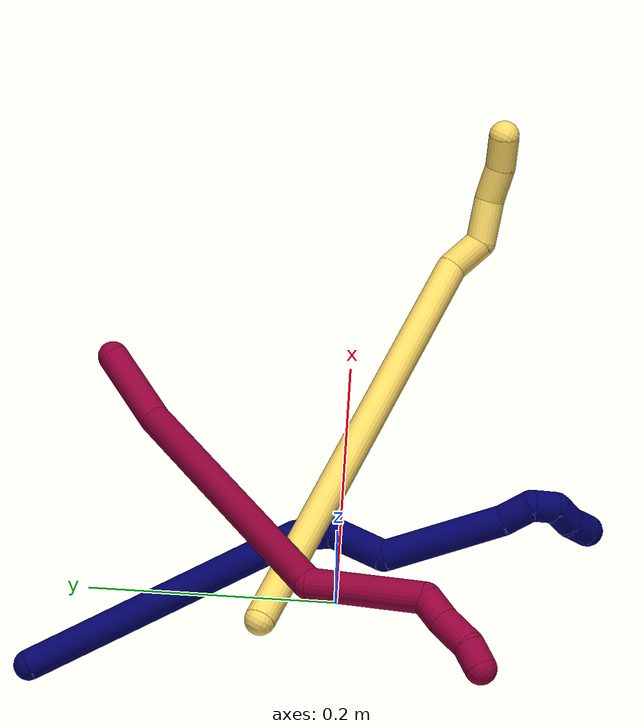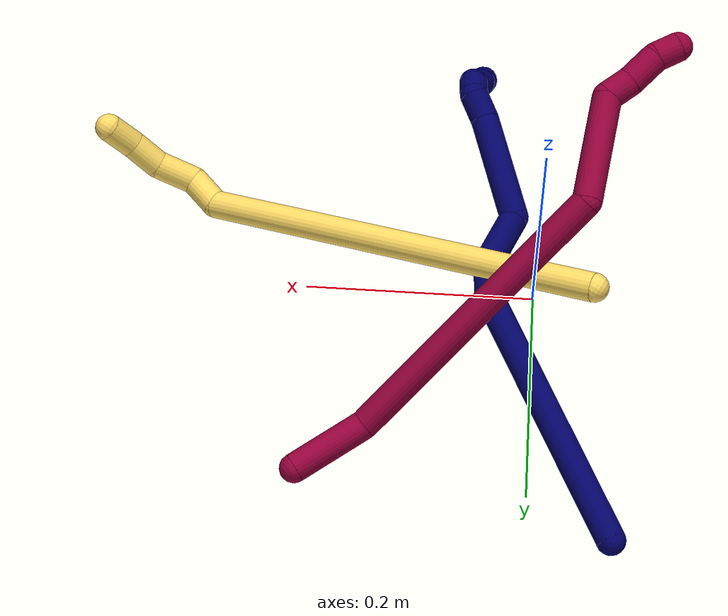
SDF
<sdf version="1.7">
 <world name="default">
  <model name="photoneo_s_sensor">
   <static>1</static>
   <pose>0 0 2 1.57079 1.57079 3.14159</pose>
   <link name="link">
    <inertial><mass>0.1</mass></inertial>
    <sensor name="sensor" type="depth">
     <update_rate>30</update_rate>
     <camera>
      <horizontal_fov>1.22</horizontal_fov>
      <image><width>1920</width><height>1200</height><format>B8G8R8</format></image>
      <clip><near>0.1</near><far>4</far></clip>
      <depth_camera><output>points</output></depth_camera>
     </camera>
     <plugin name="camera_plugin" filename="libgazebo_ros_depth_camera.so">
      <baseline>0.2</baseline>
      <alwaysOn>1</alwaysOn>
      <updateRate>0.0</updateRate>
      <cameraName>camera_ir</cameraName>
      <imageTopicName>/camera/color/image_raw</imageTopicName>
      <cameraInfoTopicName>/camera/color/camera_info</cameraInfoTopicName>
      <depthImageTopicName>/camera/depth/image_raw</depthImageTopicName>
      <depthImageCameraInfoTopicName>/camera/depth/camera_info</depthImageCameraInfoTopicName>
      <pointCloudTopicName>/camera/depth/points</pointCloudTopicName>
      <frameName>fr_optical</frameName>
      <pointCloudCutoff>0.1</pointCloudCutoff>
      <pointCloudCutoffMax>2.0</pointCloudCutoffMax>
      <distortionK1>0</distortionK1>
      <distortionK2>0</distortionK2>
      <distortionK3>0</distortionK3>
      <distortionT1>0</distortionT1>
      <distortionT2>0</distortionT2>
      <CxPrime>0</CxPrime>
      <Cx>0</Cx>
      <Cy>0</Cy>
      <focalLength>0</focalLength>
      <hackBaseline>0</hackBaseline>
     </plugin>
    </sensor>
   </link>
  </model>
  <model name="bin">
   <static>1</static>
   <link name="bottom">
    <collision name="collision-bottom">
     <pose>0 0 -0.01 0 -0 0</pose>
     <geometry><box><size>0.8 0.6 0.02</size></box></geometry>
     <surface>
      <friction><ode><mu>100</mu><mu2>100</mu2></ode></friction>
      <contact><collide_bitmask>65535</collide_bitmask></contact>
     </surface>
    </collision>
   </link>
   <link name="west_wall">
    <collision name="collision-west_wall">
     <pose>-0.41 0 0.1 0 -0 0</pose>
     <geometry><box><size>0.02 0.6 0.2</size></box></geometry>
     <surface>
      <friction><ode><mu>100</mu><mu2>100</mu2></ode></friction>
      <contact><collide_bitmask>65535</collide_bitmask></contact>
     </surface>
    </collision>
   </link>
   <link name="east_wall">
    <collision name="collision-east_wall">
     <pose>0.41 0 0.1 0 -0 0</pose>
     <geometry><box><size>0.02 0.6 0.2</size></box></geometry>
     <surface>
      <friction><ode><mu>100</mu><mu2>100</mu2></ode></friction>
      <contact><collide_bitmask>65535</collide_bitmask></contact>
     </surface>
    </collision>
   </link>
   <link name="south_wall">
    <collision name="collision-south_wall">
     <pose>0 -0.31 0.1 0 -0 0</pose>
     <geometry><box><size>0.8 0.02 0.2</size></box></geometry>
     <surface>
      <friction><ode><mu>100</mu><mu2>100</mu2></ode></friction>
      <contact><collide_bitmask>65535</collide_bitmask></contact>
     </surface>
    </collision>
   </link>
   <link name="north_wall">
    <collision name="collision-north_wall">
     <pose>0 0.31 0.1 0 -0 0</pose>
     <geometry><box><size>0.8 0.02 0.2</size></box></geometry>
     <surface>
      <friction><ode><mu>100</mu><mu2>100</mu2></ode></friction>
      <contact><collide_bitmask>65535</collide_bitmask></contact>
     </surface>
    </collision>
   </link>
  </model>
  <model name="5">
   <static>0</static>
   <link name="5">
    <collision name="collision-cylinder-e_1_1_4">
     <pose>0.07833 -0.049548 0.162453 0.296037 0.432126 0.065432</pose>
     <geometry><cylinder><radius>0.0125</radius><length>0.374066</length></cylinder></geometry>
     <surface>
      <friction><ode><mu>1.16</mu><mu2>1.16</mu2><slip1>0</slip1><slip2>0</slip2></ode></friction>
      <contact><ode><kp>1e+06</kp><kd>1</kd><max_vel>0</max_vel><min_depth>0.001</min_depth></ode></contact>
     </surface>
    </collision>
    <visual name="visual-cylinder-e_1_1_4">
     <pose>0.07833 -0.049548 0.162453 0.296037 0.432126 0.065432</pose>
     <geometry><cylinder><radius>0.0125</radius><length>0.374066</length></cylinder></geometry>
     <material><ambient>1 0.858824 0.4 1</ambient></material>
    </visual>
    <collision name="collision-cylinder-e_2_4_5">
     <pose>0.154698 -0.104574 0.339721 0.354182 -0.123553 -0.022139</pose>
     <geometry><cylinder><radius>0.0125</radius><length>0.031835</length></cylinder></geometry>
     <surface>
      <friction><ode><mu>1.16</mu><mu2>1.16</mu2><slip1>0</slip1><slip2>0</slip2></ode></friction>
      <contact><ode><kp>1e+06</kp><kd>1</kd><max_vel>0</max_vel><min_depth>0.001</min_depth></ode></contact>
     </surface>
    </collision>
    <visual name="visual-cylinder-e_2_4_5">
     <pose>0.154698 -0.104574 0.339721 0.354182 -0.123553 -0.022139</pose>
     <geometry><cylinder><radius>0.0125</radius><length>0.031835</length></cylinder></geometry>
     <material><ambient>1 0.858824 0.4 1</ambient></material>
    </visual>
    <collision name="collision-cylinder-e_3_5_6">
     <pose>0.153719 -0.104548 0.371878 -0.307353 0.053947 -0.008358</pose>
     <geometry><cylinder><radius>0.0125</radius><length>0.036442</length></cylinder></geometry>
     <surface>
      <friction><ode><mu>1.16</mu><mu2>1.16</mu2><slip1>0</slip1><slip2>0</slip2></ode></friction>
      <contact><ode><kp>1e+06</kp><kd>1</kd><max_vel>0</max_vel><min_depth>0.001</min_depth></ode></contact>
     </surface>
    </collision>
    <visual name="visual-cylinder-e_3_5_6">
     <pose>0.153719 -0.104548 0.371878 -0.307353 0.053947 -0.008358</pose>
     <geometry><cylinder><radius>0.0125</radius><length>0.036442</length></cylinder></geometry>
     <material><ambient>1 0.858824 0.4 1</ambient></material>
    </visual>
    <collision name="collision-cylinder-e_4_6_7">
     <pose>0.151129 -0.094122 0.402659 -0.351083 -0.244655 0.043605</pose>
     <geometry><cylinder><radius>0.0125</radius><length>0.029502</length></cylinder></geometry>
     <surface>
      <friction><ode><mu>1.16</mu><mu2>1.16</mu2><slip1>0</slip1><slip2>0</slip2></ode></friction>
      <contact><ode><kp>1e+06</kp><kd>1</kd><max_vel>0</max_vel><min_depth>0.001</min_depth></ode></contact>
     </surface>
    </collision>
    <visual name="visual-cylinder-e_4_6_7">
     <pose>0.151129 -0.094122 0.402659 -0.351083 -0.244655 0.043605</pose>
     <geometry><cylinder><radius>0.0125</radius><length>0.029502</length></cylinder></geometry>
     <material><ambient>1 0.858824 0.4 1</ambient></material>
    </visual>
    <collision name="collision-cylinder-e_5_7_2">
     <pose>0.144165 -0.081662 0.427493 -0.584363 -0.24328 0.073506</pose>
     <geometry><cylinder><radius>0.0125</radius><length>0.028155</length></cylinder></geometry>
     <surface>
      <friction><ode><mu>1.16</mu><mu2>1.16</mu2><slip1>0</slip1><slip2>0</slip2></ode></friction>
      <contact><ode><kp>1e+06</kp><kd>1</kd><max_vel>0</max_vel><min_depth>0.001</min_depth></ode></contact>
     </surface>
    </collision>
    <visual name="visual-cylinder-e_5_7_2">
     <pose>0.144165 -0.081662 0.427493 -0.584363 -0.24328 0.073506</pose>
     <geometry><cylinder><radius>0.0125</radius><length>0.028155</length></cylinder></geometry>
     <material><ambient>1 0.858824 0.4 1</ambient></material>
    </visual>
    <collision name="collision-sphere-2">
     <pose>0.140774 -0.074125 0.438889 0 -0 0</pose>
     <geometry><sphere><radius>0.0125</radius></sphere></geometry>
     <surface>
      <friction><ode><mu>1.16</mu><mu2>1.16</mu2><slip1>0</slip1><slip2>0</slip2></ode></friction>
      <contact><ode><kp>1e+06</kp><kd>1</kd><max_vel>0</max_vel><min_depth>0.001</min_depth></ode></contact>
     </surface>
    </collision>
    <visual name="visual-sphere-2">
     <pose>0.140774 -0.074125 0.438889 0 -0 0</pose>
     <geometry><sphere><radius>0.0125</radius></sphere></geometry>
     <material><ambient>1 0.858824 0.4 1</ambient></material>
    </visual>
    <collision name="collision-sphere-7">
     <pose>0.147556 -0.0892 0.416097 0 -0 0</pose>
     <geometry><sphere><radius>0.0125</radius></sphere></geometry>
     <surface>
      <friction><ode><mu>1.16</mu><mu2>1.16</mu2><slip1>0</slip1><slip2>0</slip2></ode></friction>
      <contact><ode><kp>1e+06</kp><kd>1</kd><max_vel>0</max_vel><min_depth>0.001</min_depth></ode></contact>
     </surface>
    </collision>
    <visual name="visual-sphere-7">
     <pose>0.147556 -0.0892 0.416097 0 -0 0</pose>
     <geometry><sphere><radius>0.0125</radius></sphere></geometry>
     <material><ambient>1 0.858824 0.4 1</ambient></material>
    </visual>
    <collision name="collision-sphere-6">
     <pose>0.154702 -0.099044 0.38922 0 -0 0</pose>
     <geometry><sphere><radius>0.0125</radius></sphere></geometry>
     <surface>
      <friction><ode><mu>1.16</mu><mu2>1.16</mu2><slip1>0</slip1><slip2>0</slip2></ode></friction>
      <contact><ode><kp>1e+06</kp><kd>1</kd><max_vel>0</max_vel><min_depth>0.001</min_depth></ode></contact>
     </surface>
    </collision>
    <visual name="visual-sphere-6">
     <pose>0.154702 -0.099044 0.38922 0 -0 0</pose>
     <geometry><sphere><radius>0.0125</radius></sphere></geometry>
     <material><ambient>1 0.858824 0.4 1</ambient></material>
    </visual>
    <collision name="collision-sphere-5">
     <pose>0.152737 -0.110053 0.354536 0 -0 0</pose>
     <geometry><sphere><radius>0.0125</radius></sphere></geometry>
     <surface>
      <friction><ode><mu>1.16</mu><mu2>1.16</mu2><slip1>0</slip1><slip2>0</slip2></ode></friction>
      <contact><ode><kp>1e+06</kp><kd>1</kd><max_vel>0</max_vel><min_depth>0.001</min_depth></ode></contact>
     </surface>
    </collision>
    <visual name="visual-sphere-5">
     <pose>0.152737 -0.110053 0.354536 0 -0 0</pose>
     <geometry><sphere><radius>0.0125</radius></sphere></geometry>
     <material><ambient>1 0.858824 0.4 1</ambient></material>
    </visual>
    <collision name="collision-sphere-1">
     <geometry><sphere><radius>0.0125</radius></sphere></geometry>
     <surface>
      <friction><ode><mu>1.16</mu><mu2>1.16</mu2><slip1>0</slip1><slip2>0</slip2></ode></friction>
      <contact><ode><kp>1e+06</kp><kd>1</kd><max_vel>0</max_vel><min_depth>0.001</min_depth></ode></contact>
     </surface>
    </collision>
    <visual name="visual-sphere-1">
     <geometry><sphere><radius>0.0125</radius></sphere></geometry>
     <material><ambient>1 0.858824 0.4 1</ambient></material>
    </visual>
    <collision name="collision-sphere-4">
     <pose>0.15666 -0.099096 0.324905 0 -0 0</pose>
     <geometry><sphere><radius>0.0125</radius></sphere></geometry>
     <surface>
      <friction><ode><mu>1.16</mu><mu2>1.16</mu2><slip1>0</slip1><slip2>0</slip2></ode></friction>
      <contact><ode><kp>1e+06</kp><kd>1</kd><max_vel>0</max_vel><min_depth>0.001</min_depth></ode></contact>
     </surface>
    </collision>
    <visual name="visual-sphere-4">
     <pose>0.15666 -0.099096 0.324905 0 -0 0</pose>
     <geometry><sphere><radius>0.0125</radius></sphere></geometry>
     <material><ambient>1 0.858824 0.4 1</ambient></material>
    </visual>
    <inertial>
     <pose>0.09669 -0.061499 0.2181 0 -0 0</pose>
     <mass>0.5</mass>
     <inertia>
      <ixx>0.004252</ixx>
      <ixy>0</ixy>
      <ixz>0</ixz>
      <iyy>0.004481</iyy>
      <iyz>0</iyz>
      <izz>-0.00064</izz>
     </inertia>
    </inertial>
   </link>
   <pose>-0.046794 0.057105 0.104579 1.17184 0.836909 0.820766</pose>
  </model>
  <model name="7">
   <static>0</static>
   <link name="7">
    <collision name="collision-cylinder-e_1_1_4">
     <pose>0.02641 -0.106708 -0.044695 1.96745 0.224435 0.335571</pose>
     <geometry><cylinder><radius>0.0125</radius><length>0.237333</length></cylinder></geometry>
     <surface>
      <friction><ode><mu>1.16</mu><mu2>1.16</mu2><slip1>0</slip1><slip2>0</slip2></ode></friction>
      <contact><ode><kp>1e+06</kp><kd>1</kd><max_vel>0</max_vel><min_depth>0.001</min_depth></ode></contact>
     </surface>
    </collision>
    <visual name="visual-cylinder-e_1_1_4">
     <pose>0.02641 -0.106708 -0.044695 1.96745 0.224435 0.335571</pose>
     <geometry><cylinder><radius>0.0125</radius><length>0.237333</length></cylinder></geometry>
     <material><ambient>0.003922 0 0.403922 1</ambient></material>
    </visual>
    <collision name="collision-cylinder-e_2_4_5">
     <pose>0.056334 -0.228198 -0.089176 1.55631 0.233401 0.230075</pose>
     <geometry><cylinder><radius>0.0125</radius><length>0.030391</length></cylinder></geometry>
     <surface>
      <friction><ode><mu>1.16</mu><mu2>1.16</mu2><slip1>0</slip1><slip2>0</slip2></ode></friction>
      <contact><ode><kp>1e+06</kp><kd>1</kd><max_vel>0</max_vel><min_depth>0.001</min_depth></ode></contact>
     </surface>
    </collision>
    <visual name="visual-cylinder-e_2_4_5">
     <pose>0.056334 -0.228198 -0.089176 1.55631 0.233401 0.230075</pose>
     <geometry><cylinder><radius>0.0125</radius><length>0.030391</length></cylinder></geometry>
     <material><ambient>0.003922 0 0.403922 1</ambient></material>
    </visual>
    <collision name="collision-cylinder-e_3_5_6">
     <pose>0.065328 -0.262912 -0.076568 1.01451 0.229315 0.127831</pose>
     <geometry><cylinder><radius>0.0125</radius><length>0.048205</length></cylinder></geometry>
     <surface>
      <friction><ode><mu>1.16</mu><mu2>1.16</mu2><slip1>0</slip1><slip2>0</slip2></ode></friction>
      <contact><ode><kp>1e+06</kp><kd>1</kd><max_vel>0</max_vel><min_depth>0.001</min_depth></ode></contact>
     </surface>
    </collision>
    <visual name="visual-cylinder-e_3_5_6">
     <pose>0.065328 -0.262912 -0.076568 1.01451 0.229315 0.127831</pose>
     <geometry><cylinder><radius>0.0125</radius><length>0.048205</length></cylinder></geometry>
     <material><ambient>0.003922 0 0.403922 1</ambient></material>
    </visual>
    <collision name="collision-cylinder-e_4_6_7">
     <pose>0.081942 -0.329488 -0.074653 1.79177 0.228859 0.285279</pose>
     <geometry><cylinder><radius>0.0125</radius><length>0.098172</length></cylinder></geometry>
     <surface>
      <friction><ode><mu>1.16</mu><mu2>1.16</mu2><slip1>0</slip1><slip2>0</slip2></ode></friction>
      <contact><ode><kp>1e+06</kp><kd>1</kd><max_vel>0</max_vel><min_depth>0.001</min_depth></ode></contact>
     </surface>
    </collision>
    <visual name="visual-cylinder-e_4_6_7">
     <pose>0.081942 -0.329488 -0.074653 1.79177 0.228859 0.285279</pose>
     <geometry><cylinder><radius>0.0125</radius><length>0.098172</length></cylinder></geometry>
     <material><ambient>0.003922 0 0.403922 1</ambient></material>
    </visual>
    <collision name="collision-cylinder-e_5_7_8">
     <pose>0.09778 -0.38721 -0.089452 1.94271 0.376546 0.54385</pose>
     <geometry><cylinder><radius>0.0125</radius><length>0.025573</length></cylinder></geometry>
     <surface>
      <friction><ode><mu>1.16</mu><mu2>1.16</mu2><slip1>0</slip1><slip2>0</slip2></ode></friction>
      <contact><ode><kp>1e+06</kp><kd>1</kd><max_vel>0</max_vel><min_depth>0.001</min_depth></ode></contact>
     </surface>
    </collision>
    <visual name="visual-cylinder-e_5_7_8">
     <pose>0.09778 -0.38721 -0.089452 1.94271 0.376546 0.54385</pose>
     <geometry><cylinder><radius>0.0125</radius><length>0.025573</length></cylinder></geometry>
     <material><ambient>0.003922 0 0.403922 1</ambient></material>
    </visual>
    <collision name="collision-cylinder-e_6_8_9">
     <pose>0.099791 -0.40806 -0.093962 1.59008 -0.268655 -0.273821</pose>
     <geometry><cylinder><radius>0.0125</radius><length>0.020276</length></cylinder></geometry>
     <surface>
      <friction><ode><mu>1.16</mu><mu2>1.16</mu2><slip1>0</slip1><slip2>0</slip2></ode></friction>
      <contact><ode><kp>1e+06</kp><kd>1</kd><max_vel>0</max_vel><min_depth>0.001</min_depth></ode></contact>
     </surface>
    </collision>
    <visual name="visual-cylinder-e_6_8_9">
     <pose>0.099791 -0.40806 -0.093962 1.59008 -0.268655 -0.273821</pose>
     <geometry><cylinder><radius>0.0125</radius><length>0.020276</length></cylinder></geometry>
     <material><ambient>0.003922 0 0.403922 1</ambient></material>
    </visual>
    <collision name="collision-cylinder-e_7_9_10">
     <pose>0.089786 -0.423912 -0.091018 1.09513 -0.818945 -0.517417</pose>
     <geometry><cylinder><radius>0.0125</radius><length>0.020026</length></cylinder></geometry>
     <surface>
      <friction><ode><mu>1.16</mu><mu2>1.16</mu2><slip1>0</slip1><slip2>0</slip2></ode></friction>
      <contact><ode><kp>1e+06</kp><kd>1</kd><max_vel>0</max_vel><min_depth>0.001</min_depth></ode></contact>
     </surface>
    </collision>
    <visual name="visual-cylinder-e_7_9_10">
     <pose>0.089786 -0.423912 -0.091018 1.09513 -0.818945 -0.517417</pose>
     <geometry><cylinder><radius>0.0125</radius><length>0.020026</length></cylinder></geometry>
     <material><ambient>0.003922 0 0.403922 1</ambient></material>
    </visual>
    <collision name="collision-cylinder-e_8_10_2">
     <pose>0.075692 -0.437314 -0.087073 1.46009 -0.743912 -0.67184</pose>
     <geometry><cylinder><radius>0.0125</radius><length>0.020025</length></cylinder></geometry>
     <surface>
      <friction><ode><mu>1.16</mu><mu2>1.16</mu2><slip1>0</slip1><slip2>0</slip2></ode></friction>
      <contact><ode><kp>1e+06</kp><kd>1</kd><max_vel>0</max_vel><min_depth>0.001</min_depth></ode></contact>
     </surface>
    </collision>
    <visual name="visual-cylinder-e_8_10_2">
     <pose>0.075692 -0.437314 -0.087073 1.46009 -0.743912 -0.67184</pose>
     <geometry><cylinder><radius>0.0125</radius><length>0.020025</length></cylinder></geometry>
     <material><ambient>0.003922 0 0.403922 1</ambient></material>
    </visual>
    <collision name="collision-sphere-2">
     <pose>0.068912 -0.444636 -0.086259 0 -0 0</pose>
     <geometry><sphere><radius>0.0125</radius></sphere></geometry>
     <surface>
      <friction><ode><mu>1.16</mu><mu2>1.16</mu2><slip1>0</slip1><slip2>0</slip2></ode></friction>
      <contact><ode><kp>1e+06</kp><kd>1</kd><max_vel>0</max_vel><min_depth>0.001</min_depth></ode></contact>
     </surface>
    </collision>
    <visual name="visual-sphere-2">
     <pose>0.068912 -0.444636 -0.086259 0 -0 0</pose>
     <geometry><sphere><radius>0.0125</radius></sphere></geometry>
     <material><ambient>0.003922 0 0.403922 1</ambient></material>
    </visual>
    <collision name="collision-sphere-10">
     <pose>0.082472 -0.429992 -0.087887 0 -0 0</pose>
     <geometry><sphere><radius>0.0125</radius></sphere></geometry>
     <surface>
      <friction><ode><mu>1.16</mu><mu2>1.16</mu2><slip1>0</slip1><slip2>0</slip2></ode></friction>
      <contact><ode><kp>1e+06</kp><kd>1</kd><max_vel>0</max_vel><min_depth>0.001</min_depth></ode></contact>
     </surface>
    </collision>
    <visual name="visual-sphere-10">
     <pose>0.082472 -0.429992 -0.087887 0 -0 0</pose>
     <geometry><sphere><radius>0.0125</radius></sphere></geometry>
     <material><ambient>0.003922 0 0.403922 1</ambient></material>
    </visual>
    <collision name="collision-sphere-9">
     <pose>0.0971 -0.417832 -0.09415 0 -0 0</pose>
     <geometry><sphere><radius>0.0125</radius></sphere></geometry>
     <surface>
      <friction><ode><mu>1.16</mu><mu2>1.16</mu2><slip1>0</slip1><slip2>0</slip2></ode></friction>
      <contact><ode><kp>1e+06</kp><kd>1</kd><max_vel>0</max_vel><min_depth>0.001</min_depth></ode></contact>
     </surface>
    </collision>
    <visual name="visual-sphere-9">
     <pose>0.0971 -0.417832 -0.09415 0 -0 0</pose>
     <geometry><sphere><radius>0.0125</radius></sphere></geometry>
     <material><ambient>0.003922 0 0.403922 1</ambient></material>
    </visual>
    <collision name="collision-sphere-4">
     <pose>0.05282 -0.213416 -0.08939 0 -0 0</pose>
     <geometry><sphere><radius>0.0125</radius></sphere></geometry>
     <surface>
      <friction><ode><mu>1.16</mu><mu2>1.16</mu2><slip1>0</slip1><slip2>0</slip2></ode></friction>
      <contact><ode><kp>1e+06</kp><kd>1</kd><max_vel>0</max_vel><min_depth>0.001</min_depth></ode></contact>
     </surface>
    </collision>
    <visual name="visual-sphere-4">
     <pose>0.05282 -0.213416 -0.08939 0 -0 0</pose>
     <geometry><sphere><radius>0.0125</radius></sphere></geometry>
     <material><ambient>0.003922 0 0.403922 1</ambient></material>
    </visual>
    <collision name="collision-sphere-1">
     <geometry><sphere><radius>0.0125</radius></sphere></geometry>
     <surface>
      <friction><ode><mu>1.16</mu><mu2>1.16</mu2><slip1>0</slip1><slip2>0</slip2></ode></friction>
      <contact><ode><kp>1e+06</kp><kd>1</kd><max_vel>0</max_vel><min_depth>0.001</min_depth></ode></contact>
     </surface>
    </collision>
    <visual name="visual-sphere-1">
     <geometry><sphere><radius>0.0125</radius></sphere></geometry>
     <material><ambient>0.003922 0 0.403922 1</ambient></material>
    </visual>
    <collision name="collision-sphere-8">
     <pose>0.102482 -0.398288 -0.093773 0 -0 0</pose>
     <geometry><sphere><radius>0.0125</radius></sphere></geometry>
     <surface>
      <friction><ode><mu>1.16</mu><mu2>1.16</mu2><slip1>0</slip1><slip2>0</slip2></ode></friction>
      <contact><ode><kp>1e+06</kp><kd>1</kd><max_vel>0</max_vel><min_depth>0.001</min_depth></ode></contact>
     </surface>
    </collision>
    <visual name="visual-sphere-8">
     <pose>0.102482 -0.398288 -0.093773 0 -0 0</pose>
     <geometry><sphere><radius>0.0125</radius></sphere></geometry>
     <material><ambient>0.003922 0 0.403922 1</ambient></material>
    </visual>
    <collision name="collision-sphere-5">
     <pose>0.059849 -0.24298 -0.088962 0 -0 0</pose>
     <geometry><sphere><radius>0.0125</radius></sphere></geometry>
     <surface>
      <friction><ode><mu>1.16</mu><mu2>1.16</mu2><slip1>0</slip1><slip2>0</slip2></ode></friction>
      <contact><ode><kp>1e+06</kp><kd>1</kd><max_vel>0</max_vel><min_depth>0.001</min_depth></ode></contact>
     </surface>
    </collision>
    <visual name="visual-sphere-5">
     <pose>0.059849 -0.24298 -0.088962 0 -0 0</pose>
     <geometry><sphere><radius>0.0125</radius></sphere></geometry>
     <material><ambient>0.003922 0 0.403922 1</ambient></material>
    </visual>
    <collision name="collision-sphere-6">
     <pose>0.070806 -0.282845 -0.064174 0 -0 0</pose>
     <geometry><sphere><radius>0.0125</radius></sphere></geometry>
     <surface>
      <friction><ode><mu>1.16</mu><mu2>1.16</mu2><slip1>0</slip1><slip2>0</slip2></ode></friction>
      <contact><ode><kp>1e+06</kp><kd>1</kd><max_vel>0</max_vel><min_depth>0.001</min_depth></ode></contact>
     </surface>
    </collision>
    <visual name="visual-sphere-6">
     <pose>0.070806 -0.282845 -0.064174 0 -0 0</pose>
     <geometry><sphere><radius>0.0125</radius></sphere></geometry>
     <material><ambient>0.003922 0 0.403922 1</ambient></material>
    </visual>
    <collision name="collision-sphere-7">
     <pose>0.093078 -0.376132 -0.085131 0 -0 0</pose>
     <geometry><sphere><radius>0.0125</radius></sphere></geometry>
     <surface>
      <friction><ode><mu>1.16</mu><mu2>1.16</mu2><slip1>0</slip1><slip2>0</slip2></ode></friction>
      <contact><ode><kp>1e+06</kp><kd>1</kd><max_vel>0</max_vel><min_depth>0.001</min_depth></ode></contact>
     </surface>
    </collision>
    <visual name="visual-sphere-7">
     <pose>0.093078 -0.376132 -0.085131 0 -0 0</pose>
     <geometry><sphere><radius>0.0125</radius></sphere></geometry>
     <material><ambient>0.003922 0 0.403922 1</ambient></material>
    </visual>
    <inertial>
     <pose>0.054022 -0.225406 -0.064193 0 -0 0</pose>
     <mass>0.5</mass>
     <inertia><ixx>0.001521</ixx><ixy>0</ixy><ixz>0</ixz><iyy>1.2e-05</iyy><iyz>0</iyz><izz>0.00083</izz></inertia>
    </inertial>
   </link>
   <pose>-0.07005 0.24174 0.011445 0.151167 -1.46624 -0.079601</pose>
  </model>
  <model name="8">
   <static>0</static>
   <link name="8">
    <collision name="collision-cylinder-e_1_1_4">
     <pose>-0.007417 0.002512 -0.03343 -3.06658 -0.217725 2.48013</pose>
     <geometry><cylinder><radius>0.0125</radius><length>0.06867</length></cylinder></geometry>
     <surface>
      <friction><ode><mu>1.16</mu><mu2>1.16</mu2><slip1>0</slip1><slip2>0</slip2></ode></friction>
      <contact><ode><kp>1e+06</kp><kd>1</kd><max_vel>0</max_vel><min_depth>0.001</min_depth></ode></contact>
     </surface>
    </collision>
    <visual name="visual-cylinder-e_1_1_4">
     <pose>-0.007417 0.002512 -0.03343 -3.06658 -0.217725 2.48013</pose>
     <geometry><cylinder><radius>0.0125</radius><length>0.06867</length></cylinder></geometry>
     <material><ambient>0.584314 0 0.227451 1</ambient></material>
    </visual>
    <collision name="collision-cylinder-e_2_4_5">
     <pose>-0.089732 -0.005756 -0.17423 3.04152 -0.606743 -2.82433</pose>
     <geometry><cylinder><radius>0.0125</radius><length>0.262711</length></cylinder></geometry>
     <surface>
      <friction><ode><mu>1.16</mu><mu2>1.16</mu2><slip1>0</slip1><slip2>0</slip2></ode></friction>
      <contact><ode><kp>1e+06</kp><kd>1</kd><max_vel>0</max_vel><min_depth>0.001</min_depth></ode></contact>
     </surface>
    </collision>
    <visual name="visual-cylinder-e_2_4_5">
     <pose>-0.089732 -0.005756 -0.17423 3.04152 -0.606743 -2.82433</pose>
     <geometry><cylinder><radius>0.0125</radius><length>0.262711</length></cylinder></geometry>
     <material><ambient>0.584314 0 0.227451 1</ambient></material>
    </visual>
    <collision name="collision-cylinder-e_3_5_6">
     <pose>-0.171292 -0.047703 -0.316299 2.40977 -0.141872 -0.366716</pose>
     <geometry><cylinder><radius>0.0125</radius><length>0.094228</length></cylinder></geometry>
     <surface>
      <friction><ode><mu>1.16</mu><mu2>1.16</mu2><slip1>0</slip1><slip2>0</slip2></ode></friction>
      <contact><ode><kp>1e+06</kp><kd>1</kd><max_vel>0</max_vel><min_depth>0.001</min_depth></ode></contact>
     </surface>
    </collision>
    <visual name="visual-cylinder-e_3_5_6">
     <pose>-0.171292 -0.047703 -0.316299 2.40977 -0.141872 -0.366716</pose>
     <geometry><cylinder><radius>0.0125</radius><length>0.094228</length></cylinder></geometry>
     <material><ambient>0.584314 0 0.227451 1</ambient></material>
    </visual>
    <collision name="collision-cylinder-e_4_6_7">
     <pose>-0.180372 -0.078592 -0.362467 -3.11743 -0.20773 2.91078</pose>
     <geometry><cylinder><radius>0.0125</radius><length>0.02345</length></cylinder></geometry>
     <surface>
      <friction><ode><mu>1.16</mu><mu2>1.16</mu2><slip1>0</slip1><slip2>0</slip2></ode></friction>
      <contact><ode><kp>1e+06</kp><kd>1</kd><max_vel>0</max_vel><min_depth>0.001</min_depth></ode></contact>
     </surface>
    </collision>
    <visual name="visual-cylinder-e_4_6_7">
     <pose>-0.180372 -0.078592 -0.362467 -3.11743 -0.20773 2.91078</pose>
     <geometry><cylinder><radius>0.0125</radius><length>0.02345</length></cylinder></geometry>
     <material><ambient>0.584314 0 0.227451 1</ambient></material>
    </visual>
    <collision name="collision-cylinder-e_5_7_8">
     <pose>-0.187672 -0.079988 -0.387905 3.02238 -0.334052 -2.46119</pose>
     <geometry><cylinder><radius>0.0125</radius><length>0.029783</length></cylinder></geometry>
     <surface>
      <friction><ode><mu>1.16</mu><mu2>1.16</mu2><slip1>0</slip1><slip2>0</slip2></ode></friction>
      <contact><ode><kp>1e+06</kp><kd>1</kd><max_vel>0</max_vel><min_depth>0.001</min_depth></ode></contact>
     </surface>
    </collision>
    <visual name="visual-cylinder-e_5_7_8">
     <pose>-0.187672 -0.079988 -0.387905 3.02238 -0.334052 -2.46119</pose>
     <geometry><cylinder><radius>0.0125</radius><length>0.029783</length></cylinder></geometry>
     <material><ambient>0.584314 0 0.227451 1</ambient></material>
    </visual>
    <collision name="collision-cylinder-e_6_8_2">
     <pose>-0.194654 -0.079695 -0.412054 -2.95082 -0.199739 1.61699</pose>
     <geometry><cylinder><radius>0.0125</radius><length>0.021158</length></cylinder></geometry>
     <surface>
      <friction><ode><mu>1.16</mu><mu2>1.16</mu2><slip1>0</slip1><slip2>0</slip2></ode></friction>
      <contact><ode><kp>1e+06</kp><kd>1</kd><max_vel>0</max_vel><min_depth>0.001</min_depth></ode></contact>
     </surface>
    </collision>
    <visual name="visual-cylinder-e_6_8_2">
     <pose>-0.194654 -0.079695 -0.412054 -2.95082 -0.199739 1.61699</pose>
     <geometry><cylinder><radius>0.0125</radius><length>0.021158</length></cylinder></geometry>
     <material><ambient>0.584314 0 0.227451 1</ambient></material>
    </visual>
    <collision name="collision-sphere-2">
     <pose>-0.196753 -0.077729 -0.422234 0 -0 0</pose>
     <geometry><sphere><radius>0.0125</radius></sphere></geometry>
     <surface>
      <friction><ode><mu>1.16</mu><mu2>1.16</mu2><slip1>0</slip1><slip2>0</slip2></ode></friction>
      <contact><ode><kp>1e+06</kp><kd>1</kd><max_vel>0</max_vel><min_depth>0.001</min_depth></ode></contact>
     </surface>
    </collision>
    <visual name="visual-sphere-2">
     <pose>-0.196753 -0.077729 -0.422234 0 -0 0</pose>
     <geometry><sphere><radius>0.0125</radius></sphere></geometry>
     <material><ambient>0.584314 0 0.227451 1</ambient></material>
    </visual>
    <collision name="collision-sphere-4">
     <pose>-0.014833 0.005025 -0.06686 0 -0 0</pose>
     <geometry><sphere><radius>0.0125</radius></sphere></geometry>
     <surface>
      <friction><ode><mu>1.16</mu><mu2>1.16</mu2><slip1>0</slip1><slip2>0</slip2></ode></friction>
      <contact><ode><kp>1e+06</kp><kd>1</kd><max_vel>0</max_vel><min_depth>0.001</min_depth></ode></contact>
     </surface>
    </collision>
    <visual name="visual-sphere-4">
     <pose>-0.014833 0.005025 -0.06686 0 -0 0</pose>
     <geometry><sphere><radius>0.0125</radius></sphere></geometry>
     <material><ambient>0.584314 0 0.227451 1</ambient></material>
    </visual>
    <collision name="collision-sphere-1">
     <geometry><sphere><radius>0.0125</radius></sphere></geometry>
     <surface>
      <friction><ode><mu>1.16</mu><mu2>1.16</mu2><slip1>0</slip1><slip2>0</slip2></ode></friction>
      <contact><ode><kp>1e+06</kp><kd>1</kd><max_vel>0</max_vel><min_depth>0.001</min_depth></ode></contact>
     </surface>
    </collision>
    <visual name="visual-sphere-1">
     <geometry><sphere><radius>0.0125</radius></sphere></geometry>
     <material><ambient>0.584314 0 0.227451 1</ambient></material>
    </visual>
    <collision name="collision-sphere-8">
     <pose>-0.192555 -0.081661 -0.401873 0 -0 0</pose>
     <geometry><sphere><radius>0.0125</radius></sphere></geometry>
     <surface>
      <friction><ode><mu>1.16</mu><mu2>1.16</mu2><slip1>0</slip1><slip2>0</slip2></ode></friction>
      <contact><ode><kp>1e+06</kp><kd>1</kd><max_vel>0</max_vel><min_depth>0.001</min_depth></ode></contact>
     </surface>
    </collision>
    <visual name="visual-sphere-8">
     <pose>-0.192555 -0.081661 -0.401873 0 -0 0</pose>
     <geometry><sphere><radius>0.0125</radius></sphere></geometry>
     <material><ambient>0.584314 0 0.227451 1</ambient></material>
    </visual>
    <collision name="collision-sphere-5">
     <pose>-0.16463 -0.016536 -0.2816 0 -0 0</pose>
     <geometry><sphere><radius>0.0125</radius></sphere></geometry>
     <surface>
      <friction><ode><mu>1.16</mu><mu2>1.16</mu2><slip1>0</slip1><slip2>0</slip2></ode></friction>
      <contact><ode><kp>1e+06</kp><kd>1</kd><max_vel>0</max_vel><min_depth>0.001</min_depth></ode></contact>
     </surface>
    </collision>
    <visual name="visual-sphere-5">
     <pose>-0.16463 -0.016536 -0.2816 0 -0 0</pose>
     <geometry><sphere><radius>0.0125</radius></sphere></geometry>
     <material><ambient>0.584314 0 0.227451 1</ambient></material>
    </visual>
    <collision name="collision-sphere-6">
     <pose>-0.177953 -0.07887 -0.350997 0 -0 0</pose>
     <geometry><sphere><radius>0.0125</radius></sphere></geometry>
     <surface>
      <friction><ode><mu>1.16</mu><mu2>1.16</mu2><slip1>0</slip1><slip2>0</slip2></ode></friction>
      <contact><ode><kp>1e+06</kp><kd>1</kd><max_vel>0</max_vel><min_depth>0.001</min_depth></ode></contact>
     </surface>
    </collision>
    <visual name="visual-sphere-6">
     <pose>-0.177953 -0.07887 -0.350997 0 -0 0</pose>
     <geometry><sphere><radius>0.0125</radius></sphere></geometry>
     <material><ambient>0.584314 0 0.227451 1</ambient></material>
    </visual>
    <collision name="collision-sphere-7">
     <pose>-0.18279 -0.078315 -0.373936 0 -0 0</pose>
     <geometry><sphere><radius>0.0125</radius></sphere></geometry>
     <surface>
      <friction><ode><mu>1.16</mu><mu2>1.16</mu2><slip1>0</slip1><slip2>0</slip2></ode></friction>
      <contact><ode><kp>1e+06</kp><kd>1</kd><max_vel>0</max_vel><min_depth>0.001</min_depth></ode></contact>
     </surface>
    </collision>
    <visual name="visual-sphere-7">
     <pose>-0.18279 -0.078315 -0.373936 0 -0 0</pose>
     <geometry><sphere><radius>0.0125</radius></sphere></geometry>
     <material><ambient>0.584314 0 0.227451 1</ambient></material>
    </visual>
    <inertial>
     <pose>-0.108322 -0.023492 -0.213286 0 -0 0</pose>
     <mass>0.5</mass>
     <inertia>
      <ixx>-0.00156</ixx>
      <ixy>0</ixy>
      <ixz>0</ixz>
      <iyy>0.001041</iyy>
      <iyz>0</iyz>
      <izz>0.001024</izz>
     </inertia>
    </inertial>
   </link>
   <pose>0.192812 0.194609 0.016052 -1.46401 1.3172 -0.725779</pose>
  </model>
 </world>
</sdf>
